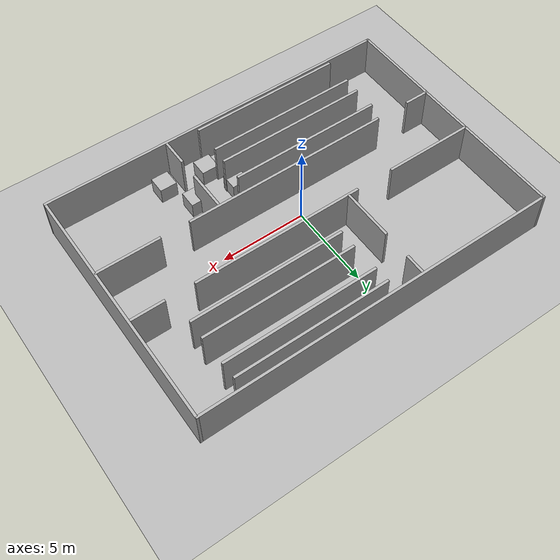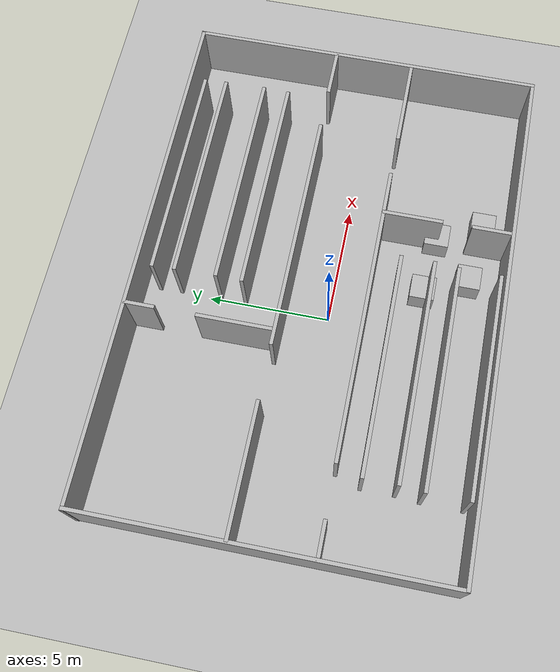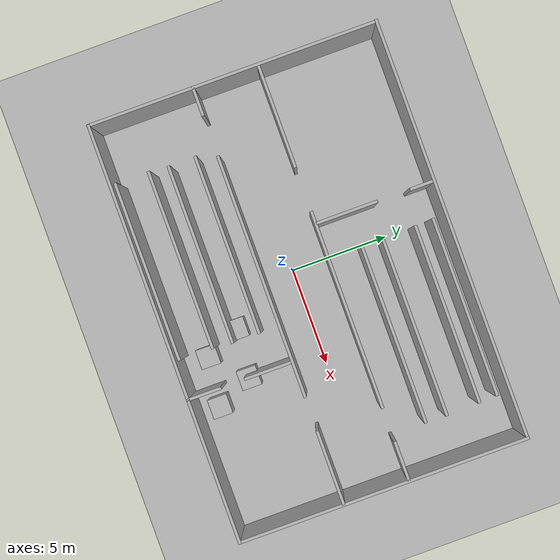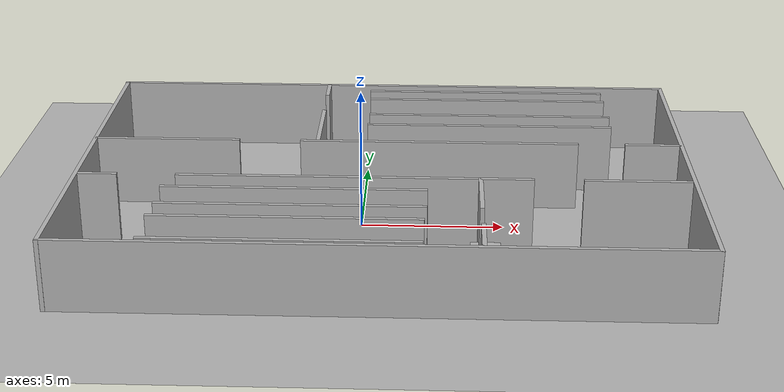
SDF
<sdf version="1.9">
 <world name="default">
  <physics type="ode">
   <ode>
    <solver>
     <type>quick</type>
     <iters>50</iters>
     <sor>1.3999999999999999</sor>
     <use_dynamic_moi_rescaling>false</use_dynamic_moi_rescaling>
    </solver>
    <constraints>
     <cfm>0</cfm>
     <erp>0.20000000000000001</erp>
     <contact_max_correcting_vel>100</contact_max_correcting_vel>
     <contact_surface_layer>0</contact_surface_layer>
    </constraints>
   </ode>
   <real_time_update_rate>1000</real_time_update_rate>
   <max_step_size>0.001</max_step_size>
   <real_time_factor>1</real_time_factor>
  </physics>
  <plugin name="gz::sim::systems::Physics" filename="gz-sim-physics-system"/>
  <plugin name="gz::sim::systems::UserCommands" filename="gz-sim-user-commands-system"/>
  <plugin name="gz::sim::systems::SceneBroadcaster" filename="gz-sim-scene-broadcaster-system"/>
  <plugin name="gz::sim::systems::Contact" filename="gz-sim-contact-system"/>
  <plugin name="gz::sim::systems::Imu" filename="gz-sim-imu-system"/>
  <plugin name="gz::sim::systems::Sensors" filename="gz-sim-sensors-system">
   <render_engine>ogre2</render_engine>
  </plugin>
  <gravity>0 0 -9.81</gravity>
  <magnetic_field>6e-06 2.3e-05 -4.2e-05</magnetic_field>
  <atmosphere type="adiabatic"/>
  <scene><ambient>0.4 0.4 0.4 1</ambient><background>0.7 0.7 0.7 1</background><shadows>true</shadows></scene>
  <audio><device>default</device></audio>
  <spherical_coordinates>
   <surface_model>EARTH_WGS84</surface_model>
   <latitude_deg>0</latitude_deg>
   <longitude_deg>0</longitude_deg>
   <elevation>0</elevation>
   <heading_deg>0</heading_deg>
  </spherical_coordinates>
  <model name="ground_plane">
   <static>true</static>
   <link name="link">
    <collision name="collision">
     <geometry><plane><normal>0 0 1</normal><size>100 100</size></plane></geometry>
     <surface><friction><ode><mu>100</mu><mu2>50</mu2></ode></friction></surface>
    </collision>
    <visual name="visual">
     <cast_shadows>false</cast_shadows>
     <geometry><plane><normal>0 0 1</normal><size>100 100</size></plane></geometry>
     <material>
      <ambient>0.7 0.7 0.7 1</ambient>
      <diffuse>0.7 0.7 0.7 1</diffuse>
      <specular>0.1 0.1 0.1 1</specular>
     </material>
    </visual>
    <inertial>
     <mass>1</mass>
     <inertia><ixx>1</ixx><ixy>0</ixy><ixz>0</ixz><iyy>1</iyy><iyz>0</iyz><izz>1</izz></inertia>
    </inertial>
   </link>
  </model>
  <model name="navigation_gym">
   <pose>0.806105 0.525836 0 0 -0 0</pose>
   <link name="Wall_11">
    <collision name="Wall_11_Collision">
     <geometry><box><size>3.1 0.15 2.5</size></box></geometry>
     <pose>0 0 1.25 0 -0 0</pose>
    </collision>
    <visual name="Wall_11_Visual">
     <pose>0 0 1.25 0 -0 0</pose>
     <geometry><box><size>3.1 0.15 2.5</size></box></geometry>
     <material>
      <ambient>0.7 0.7 0.7 1</ambient>
      <diffuse>0.7 0.7 0.7 1</diffuse>
      <specular>0.1 0.1 0.1 1</specular>
     </material>
     <meta><layer>0</layer></meta>
    </visual>
    <pose>-2.47611 2.875 0 0 0 -1.5708</pose>
    <inertial>
     <mass>1</mass>
     <inertia><ixx>1</ixx><ixy>0</ixy><ixz>0</ixz><iyy>1</iyy><iyz>0</iyz><izz>1</izz></inertia>
    </inertial>
   </link>
   <link name="Wall_13">
    <collision name="Wall_13_Collision">
     <geometry><box><size>2 0.15 2.5</size></box></geometry>
     <pose>0 0 1.25 0 -0 0</pose>
    </collision>
    <visual name="Wall_13_Visual">
     <pose>0 0 1.25 0 -0 0</pose>
     <geometry><box><size>2 0.15 2.5</size></box></geometry>
     <material>
      <ambient>0.7 0.7 0.7 1</ambient>
      <diffuse>0.7 0.7 0.7 1</diffuse>
      <specular>0.1 0.1 0.1 1</specular>
     </material>
     <meta><layer>0</layer></meta>
    </visual>
    <pose>9.56268 1.28894 0 0 -0 0</pose>
    <inertial>
     <mass>1</mass>
     <inertia><ixx>1</ixx><ixy>0</ixy><ixz>0</ixz><iyy>1</iyy><iyz>0</iyz><izz>1</izz></inertia>
    </inertial>
   </link>
   <link name="Wall_17">
    <collision name="Wall_17_Collision">
     <geometry><box><size>1.5 0.15 2.5</size></box></geometry>
     <pose>0 0 1.25 0 -0 0</pose>
    </collision>
    <visual name="Wall_17_Visual">
     <pose>0 0 1.25 0 -0 0</pose>
     <geometry><box><size>1.5 0.15 2.5</size></box></geometry>
     <material>
      <ambient>0.7 0.7 0.7 1</ambient>
      <diffuse>0.7 0.7 0.7 1</diffuse>
      <specular>0.1 0.1 0.1 1</specular>
     </material>
     <meta><layer>0</layer></meta>
    </visual>
    <pose>-9.86929 -2.00022 0 0 -0 3.14159</pose>
    <inertial>
     <mass>1</mass>
     <inertia><ixx>1</ixx><ixy>0</ixy><ixz>0</ixz><iyy>1</iyy><iyz>0</iyz><izz>1</izz></inertia>
    </inertial>
   </link>
   <link name="Wall_19">
    <collision name="Wall_19_Collision">
     <geometry><box><size>12.25 0.15 2.5</size></box></geometry>
     <pose>0 0 1.25 0 -0 0</pose>
    </collision>
    <visual name="Wall_19_Visual">
     <pose>0 0 1.25 0 -0 0</pose>
     <geometry><box><size>12.25 0.15 2.5</size></box></geometry>
     <material>
      <ambient>0.7 0.7 0.7 1</ambient>
      <diffuse>0.7 0.7 0.7 1</diffuse>
      <specular>0.1 0.1 0.1 1</specular>
     </material>
     <meta><layer>0</layer></meta>
    </visual>
    <pose>-0.979866 -1.99998 0 0 -0 0</pose>
    <inertial>
     <mass>1</mass>
     <inertia><ixx>1</ixx><ixy>0</ixy><ixz>0</ixz><iyy>1</iyy><iyz>0</iyz><izz>1</izz></inertia>
    </inertial>
   </link>
   <link name="Wall_2">
    <collision name="Wall_2_Collision">
     <geometry><box><size>21.25 0.15 2.5</size></box></geometry>
     <pose>0 0 1.25 0 -0 0</pose>
    </collision>
    <visual name="Wall_2_Visual">
     <pose>0 0 1.25 0 -0 0</pose>
     <geometry><box><size>21.25 0.15 2.5</size></box></geometry>
     <material>
      <ambient>0.7 0.7 0.7 1</ambient>
      <diffuse>0.7 0.7 0.7 1</diffuse>
      <specular>0.1 0.1 0.1 1</specular>
     </material>
     <meta><layer>0</layer></meta>
    </visual>
    <pose>0.021038 -7.29806 0 0 -0 0</pose>
    <inertial>
     <mass>1</mass>
     <inertia><ixx>1</ixx><ixy>0</ixy><ixz>0</ixz><iyy>1</iyy><iyz>0</iyz><izz>1</izz></inertia>
    </inertial>
   </link>
   <link name="Wall_28">
    <collision name="Wall_28_Collision">
     <geometry><box><size>3.75 0.15 2.5</size></box></geometry>
     <pose>0 0 1.25 0 -0 0</pose>
    </collision>
    <visual name="Wall_28_Visual">
     <pose>0 0 1.25 0 -0 0</pose>
     <geometry><box><size>3.75 0.15 2.5</size></box></geometry>
     <material>
      <ambient>0.7 0.7 0.7 1</ambient>
      <diffuse>0.7 0.7 0.7 1</diffuse>
      <specular>0.1 0.1 0.1 1</specular>
     </material>
     <meta><layer>0</layer></meta>
    </visual>
    <pose>8.70181 -2.01738 0 0 -0 0</pose>
    <inertial>
     <mass>1</mass>
     <inertia><ixx>1</ixx><ixy>0</ixy><ixz>0</ixz><iyy>1</iyy><iyz>0</iyz><izz>1</izz></inertia>
    </inertial>
   </link>
   <link name="Wall_3">
    <collision name="Wall_3_Collision">
     <geometry><box><size>14.75 0.15 2.5</size></box></geometry>
     <pose>0 0 1.25 0 -0 0</pose>
    </collision>
    <visual name="Wall_3_Visual">
     <pose>0 0 1.25 0 -0 0</pose>
     <geometry><box><size>14.75 0.15 2.5</size></box></geometry>
     <material>
      <ambient>0.7 0.7 0.7 1</ambient>
      <diffuse>0.7 0.7 0.7 1</diffuse>
      <specular>0.1 0.1 0.1 1</specular>
     </material>
     <meta><layer>0</layer></meta>
    </visual>
    <pose>10.571 0.00194 0 0 -0 1.5708</pose>
    <inertial>
     <mass>1</mass>
     <inertia><ixx>1</ixx><ixy>0</ixy><ixz>0</ixz><iyy>1</iyy><iyz>0</iyz><izz>1</izz></inertia>
    </inertial>
   </link>
   <link name="Wall_30">
    <collision name="Wall_30_Collision">
     <geometry><box><size>2.5 0.15 2.5</size></box></geometry>
     <pose>0 0 1.25 0 -0 0</pose>
    </collision>
    <visual name="Wall_30_Visual">
     <pose>0 0 1.25 0 -0 0</pose>
     <geometry><box><size>2.5 0.15 2.5</size></box></geometry>
     <material>
      <ambient>0.7 0.7 0.7 1</ambient>
      <diffuse>0.7 0.7 0.7 1</diffuse>
      <specular>0.1 0.1 0.1 1</specular>
     </material>
     <meta><layer>0</layer></meta>
    </visual>
    <pose>3.33172 -3.18497 0 0 0 -1.5708</pose>
    <inertial>
     <mass>1</mass>
     <inertia><ixx>1</ixx><ixy>0</ixy><ixz>0</ixz><iyy>1</iyy><iyz>0</iyz><izz>1</izz></inertia>
    </inertial>
   </link>
   <link name="Wall_33">
    <collision name="Wall_33_Collision">
     <geometry><box><size>1.25 0.15 2.5</size></box></geometry>
     <pose>0 0 1.25 0 -0 0</pose>
    </collision>
    <visual name="Wall_33_Visual">
     <pose>0 0 1.25 0 -0 0</pose>
     <geometry><box><size>1.25 0.15 2.5</size></box></geometry>
     <material>
      <ambient>0.7 0.7 0.7 1</ambient>
      <diffuse>0.7 0.7 0.7 1</diffuse>
      <specular>0.1 0.1 0.1 1</specular>
     </material>
     <meta><layer>0</layer></meta>
    </visual>
    <pose>-2.47444 6.6858 0 0 0 -1.5708</pose>
    <inertial>
     <mass>1</mass>
     <inertia><ixx>1</ixx><ixy>0</ixy><ixz>0</ixz><iyy>1</iyy><iyz>0</iyz><izz>1</izz></inertia>
    </inertial>
   </link>
   <link name="Wall_35">
    <collision name="Wall_35_Collision">
     <geometry><box><size>10 0.15 2.5</size></box></geometry>
     <pose>0 0 1.25 0 -0 0</pose>
    </collision>
    <visual name="Wall_35_Visual">
     <pose>0 0 1.25 0 -0 0</pose>
     <geometry><box><size>10 0.15 2.5</size></box></geometry>
     <material>
      <ambient>0.7 0.7 0.7 1</ambient>
      <diffuse>0.7 0.7 0.7 1</diffuse>
      <specular>0.1 0.1 0.1 1</specular>
     </material>
     <meta><layer>0</layer></meta>
    </visual>
    <pose>1.89146 1.28997 0 0 -0 0</pose>
    <inertial>
     <mass>1</mass>
     <inertia><ixx>1</ixx><ixy>0</ixy><ixz>0</ixz><iyy>1</iyy><iyz>0</iyz><izz>1</izz></inertia>
    </inertial>
   </link>
   <link name="Wall_38">
    <collision name="Wall_38_Collision">
     <geometry><box><size>1.75 0.15 2.5</size></box></geometry>
     <pose>0 0 1.25 0 -0 0</pose>
    </collision>
    <visual name="Wall_38_Visual">
     <pose>0 0 1.25 0 -0 0</pose>
     <geometry><box><size>1.75 0.15 2.5</size></box></geometry>
     <material>
      <ambient>0.7 0.7 0.7 1</ambient>
      <diffuse>0.7 0.7 0.7 1</diffuse>
      <specular>0.1 0.1 0.1 1</specular>
     </material>
     <meta><layer>0</layer></meta>
    </visual>
    <pose>3.34062 -6.4875 0 0 -0 1.5708</pose>
    <inertial>
     <mass>1</mass>
     <inertia><ixx>1</ixx><ixy>0</ixy><ixz>0</ixz><iyy>1</iyy><iyz>0</iyz><izz>1</izz></inertia>
    </inertial>
   </link>
   <link name="Wall_40">
    <collision name="Wall_40_Collision">
     <geometry><box><size>9 0.15 2.5</size></box></geometry>
     <pose>0 0 1.25 0 -0 0</pose>
    </collision>
    <visual name="Wall_40_Visual">
     <pose>0 0 1.25 0 -0 0</pose>
     <geometry><box><size>9 0.15 2.5</size></box></geometry>
     <material>
      <ambient>0.7 0.7 0.7 1</ambient>
      <diffuse>0.7 0.7 0.7 1</diffuse>
      <specular>0.1 0.1 0.1 1</specular>
     </material>
     <meta><layer>0</layer></meta>
    </visual>
    <pose>-2.95897 -3.02317 0 0 -0 0</pose>
    <inertial>
     <mass>1</mass>
     <inertia><ixx>1</ixx><ixy>0</ixy><ixz>0</ixz><iyy>1</iyy><iyz>0</iyz><izz>1</izz></inertia>
    </inertial>
   </link>
   <link name="Wall_42">
    <collision name="Wall_42_Collision">
     <geometry><box><size>9 0.15 2.5</size></box></geometry>
     <pose>0 0 1.25 0 -0 0</pose>
    </collision>
    <visual name="Wall_42_Visual">
     <pose>0 0 1.25 0 -0 0</pose>
     <geometry><box><size>9 0.15 2.5</size></box></geometry>
     <material>
      <ambient>0.7 0.7 0.7 1</ambient>
      <diffuse>0.7 0.7 0.7 1</diffuse>
      <specular>0.1 0.1 0.1 1</specular>
     </material>
     <meta><layer>0</layer></meta>
    </visual>
    <pose>-2.96014 -4.37595 0 0 -0 0</pose>
    <inertial>
     <mass>1</mass>
     <inertia><ixx>1</ixx><ixy>0</ixy><ixz>0</ixz><iyy>1</iyy><iyz>0</iyz><izz>1</izz></inertia>
    </inertial>
   </link>
   <link name="Wall_46">
    <collision name="Wall_46_Collision">
     <geometry><box><size>9 0.15 2.5</size></box></geometry>
     <pose>0 0 1.25 0 -0 0</pose>
    </collision>
    <visual name="Wall_46_Visual">
     <pose>0 0 1.25 0 -0 0</pose>
     <geometry><box><size>9 0.15 2.5</size></box></geometry>
     <material>
      <ambient>0.7 0.7 0.7 1</ambient>
      <diffuse>0.7 0.7 0.7 1</diffuse>
      <specular>0.1 0.1 0.1 1</specular>
     </material>
     <meta><layer>0</layer></meta>
    </visual>
    <pose>-3.05123 -7.04123 0 0 -0 0</pose>
    <inertial>
     <mass>1</mass>
     <inertia><ixx>1</ixx><ixy>0</ixy><ixz>0</ixz><iyy>1</iyy><iyz>0</iyz><izz>1</izz></inertia>
    </inertial>
   </link>
   <link name="Wall_48">
    <collision name="Wall_48_Collision">
     <geometry><box><size>9 0.15 2.5</size></box></geometry>
     <pose>0 0 1.25 0 -0 0</pose>
    </collision>
    <visual name="Wall_48_Visual">
     <pose>0 0 1.25 0 -0 0</pose>
     <geometry><box><size>9 0.15 2.5</size></box></geometry>
     <material>
      <ambient>0.7 0.7 0.7 1</ambient>
      <diffuse>0.7 0.7 0.7 1</diffuse>
      <specular>0.1 0.1 0.1 1</specular>
     </material>
     <meta><layer>0</layer></meta>
    </visual>
    <pose>-3.04033 -5.35714 0 0 -0 3.14159</pose>
    <inertial>
     <mass>1</mass>
     <inertia><ixx>1</ixx><ixy>0</ixy><ixz>0</ixz><iyy>1</iyy><iyz>0</iyz><izz>1</izz></inertia>
    </inertial>
   </link>
   <link name="Wall_5">
    <collision name="Wall_5_Collision">
     <geometry><box><size>21.263 0.15 2.5</size></box></geometry>
     <pose>0 0 1.25 0 -0 0</pose>
    </collision>
    <visual name="Wall_5_Visual">
     <pose>0 0 1.25 0 -0 0</pose>
     <geometry><box><size>21.263 0.15 2.5</size></box></geometry>
     <material>
      <ambient>0.7 0.7 0.7 1</ambient>
      <diffuse>0.7 0.7 0.7 1</diffuse>
      <specular>0.1 0.1 0.1 1</specular>
     </material>
     <meta><layer>0</layer></meta>
    </visual>
    <pose>-0.014518 7.29442 0 0 -0 3.14125</pose>
    <inertial>
     <mass>1</mass>
     <inertia><ixx>1</ixx><ixy>0</ixy><ixz>0</ixz><iyy>1</iyy><iyz>0</iyz><izz>1</izz></inertia>
    </inertial>
   </link>
   <link name="Wall_50">
    <collision name="Wall_50_Collision">
     <geometry><box><size>9 0.15 2.5</size></box></geometry>
     <pose>0 0 1.25 0 -0 0</pose>
    </collision>
    <visual name="Wall_50_Visual">
     <pose>0 0 1.25 0 -0 0</pose>
     <geometry><box><size>9 0.15 2.5</size></box></geometry>
     <material>
      <ambient>0.7 0.7 0.7 1</ambient>
      <diffuse>0.7 0.7 0.7 1</diffuse>
      <specular>0.1 0.1 0.1 1</specular>
     </material>
     <meta><layer>0</layer></meta>
    </visual>
    <pose>3.68484 6.62682 0 0 -0 0</pose>
    <inertial>
     <mass>1</mass>
     <inertia><ixx>1</ixx><ixy>0</ixy><ixz>0</ixz><iyy>1</iyy><iyz>0</iyz><izz>1</izz></inertia>
    </inertial>
   </link>
   <link name="Wall_55">
    <collision name="Wall_55_Collision">
     <geometry><box><size>9 0.15 2.5</size></box></geometry>
     <pose>0 0 1.25 0 -0 0</pose>
    </collision>
    <visual name="Wall_55_Visual">
     <pose>0 0 1.25 0 -0 0</pose>
     <geometry><box><size>9 0.15 2.5</size></box></geometry>
     <material>
      <ambient>0.7 0.7 0.7 1</ambient>
      <diffuse>0.7 0.7 0.7 1</diffuse>
      <specular>0.1 0.1 0.1 1</specular>
     </material>
     <meta><layer>0</layer></meta>
    </visual>
    <pose>3.71944 5.71674 0 0 -0 0</pose>
    <inertial>
     <mass>1</mass>
     <inertia><ixx>1</ixx><ixy>0</ixy><ixz>0</ixz><iyy>1</iyy><iyz>0</iyz><izz>1</izz></inertia>
    </inertial>
   </link>
   <link name="Wall_6">
    <collision name="Wall_6_Collision">
     <geometry><box><size>14.75 0.15 2.5</size></box></geometry>
     <pose>0 0 1.25 0 -0 0</pose>
    </collision>
    <visual name="Wall_6_Visual">
     <pose>0 0 1.25 0 -0 0</pose>
     <geometry><box><size>14.75 0.15 2.5</size></box></geometry>
     <material>
      <ambient>0.7 0.7 0.7 1</ambient>
      <diffuse>0.7 0.7 0.7 1</diffuse>
      <specular>0.1 0.1 0.1 1</specular>
     </material>
     <meta><layer>0</layer></meta>
    </visual>
    <pose>-10.5511 -0.001941 0 0 0 -1.5708</pose>
    <inertial>
     <mass>1</mass>
     <inertia><ixx>1</ixx><ixy>0</ixy><ixz>0</ixz><iyy>1</iyy><iyz>0</iyz><izz>1</izz></inertia>
    </inertial>
   </link>
   <link name="Wall_62">
    <collision name="Wall_62_Collision">
     <geometry><box><size>9 0.15 2.5</size></box></geometry>
     <pose>0 0 1.25 0 -0 0</pose>
    </collision>
    <visual name="Wall_62_Visual">
     <pose>0 0 1.25 0 -0 0</pose>
     <geometry><box><size>9 0.15 2.5</size></box></geometry>
     <material>
      <ambient>0.7 0.7 0.7 1</ambient>
      <diffuse>0.7 0.7 0.7 1</diffuse>
      <specular>0.1 0.1 0.1 1</specular>
     </material>
     <meta><layer>0</layer></meta>
    </visual>
    <pose>3.76927 4.04725 0 0 -0 0</pose>
    <inertial>
     <mass>1</mass>
     <inertia><ixx>1</ixx><ixy>0</ixy><ixz>0</ixz><iyy>1</iyy><iyz>0</iyz><izz>1</izz></inertia>
    </inertial>
   </link>
   <link name="Wall_64">
    <collision name="Wall_64_Collision">
     <geometry><box><size>9 0.15 2.5</size></box></geometry>
     <pose>0 0 1.25 0 -0 0</pose>
    </collision>
    <visual name="Wall_64_Visual">
     <pose>0 0 1.25 0 -0 0</pose>
     <geometry><box><size>9 0.15 2.5</size></box></geometry>
     <material>
      <ambient>0.7 0.7 0.7 1</ambient>
      <diffuse>0.7 0.7 0.7 1</diffuse>
      <specular>0.1 0.1 0.1 1</specular>
     </material>
     <meta><layer>0</layer></meta>
    </visual>
    <pose>3.73711 2.98614 0 0 -0 0</pose>
    <inertial>
     <mass>1</mass>
     <inertia><ixx>1</ixx><ixy>0</ixy><ixz>0</ixz><iyy>1</iyy><iyz>0</iyz><izz>1</izz></inertia>
    </inertial>
   </link>
   <link name="Wall_8">
    <collision name="Wall_8_Collision">
     <geometry><box><size>5.25 0.15 2.5</size></box></geometry>
     <pose>0 0 1.25 0 -0 0</pose>
    </collision>
    <visual name="Wall_8_Visual">
     <pose>0 0 1.25 0 -0 0</pose>
     <geometry><box><size>5.25 0.15 2.5</size></box></geometry>
     <material>
      <ambient>0.7 0.7 0.7 1</ambient>
      <diffuse>0.7 0.7 0.7 1</diffuse>
      <specular>0.1 0.1 0.1 1</specular>
     </material>
     <meta><layer>0</layer></meta>
    </visual>
    <pose>-7.9377 1.28982 0 0 -0 0</pose>
    <inertial>
     <mass>1</mass>
     <inertia><ixx>1</ixx><ixy>0</ixy><ixz>0</ixz><iyy>1</iyy><iyz>0</iyz><izz>1</izz></inertia>
    </inertial>
   </link>
   <static>true</static>
  </model>
  <model name="box">
   <pose>5.12636 -5.66602 0.5 -0 -0 0</pose>
   <link name="box_link">
    <inertial>
     <inertia><ixx>0.16666</ixx><ixy>0</ixy><ixz>0</ixz><iyy>0.16666</iyy><iyz>0</iyz><izz>0.16666</izz></inertia>
     <mass>1</mass>
    </inertial>
    <collision name="box_collision"><geometry><box><size>1 1 1</size></box></geometry></collision>
    <visual name="box_visual">
     <geometry><box><size>1 1 1</size></box></geometry>
     <material>
      <ambient>0.3 0.3 0.3 1</ambient>
      <diffuse>0.7 0.7 0.7 1</diffuse>
      <specular>1 1 1 1</specular>
     </material>
    </visual>
   </link>
   <static>false</static>
  </model>
  <model name="box_0">
   <pose>4.27898 -3.83993 0.5 0 -0 0</pose>
   <link name="box_link">
    <inertial>
     <inertia><ixx>0.16666</ixx><ixy>0</ixy><ixz>0</ixz><iyy>0.16666</iyy><iyz>0</iyz><izz>0.16666</izz></inertia>
     <mass>1</mass>
    </inertial>
    <collision name="box_collision"><geometry><box><size>1 1 1</size></box></geometry></collision>
    <visual name="box_visual">
     <geometry><box><size>1 1 1</size></box></geometry>
     <material>
      <ambient>0.3 0.3 0.3 1</ambient>
      <diffuse>0.7 0.7 0.7 1</diffuse>
      <specular>1 1 1 1</specular>
     </material>
    </visual>
   </link>
   <static>false</static>
  </model>
  <model name="box_1">
   <pose>1.80732 -3.59703 0.5 -0 0 -0</pose>
   <link name="box_link">
    <inertial>
     <inertia><ixx>0.16666</ixx><ixy>0</ixy><ixz>0</ixz><iyy>0.16666</iyy><iyz>0</iyz><izz>0.16666</izz></inertia>
     <mass>1</mass>
    </inertial>
    <collision name="box_collision"><geometry><box><size>1 1 1</size></box></geometry></collision>
    <visual name="box_visual">
     <geometry><box><size>1 1 1</size></box></geometry>
     <material>
      <ambient>0.3 0.3 0.3 1</ambient>
      <diffuse>0.7 0.7 0.7 1</diffuse>
      <specular>1 1 1 1</specular>
     </material>
    </visual>
   </link>
   <static>false</static>
  </model>
  <model name="box_2">
   <pose>2.61495 -5.38543 0.5 -0 -0 0</pose>
   <link name="box_link">
    <inertial>
     <inertia><ixx>0.16666</ixx><ixy>0</ixy><ixz>0</ixz><iyy>0.16666</iyy><iyz>0</iyz><izz>0.16666</izz></inertia>
     <mass>1</mass>
    </inertial>
    <collision name="box_collision"><geometry><box><size>1 1 1</size></box></geometry></collision>
    <visual name="box_visual">
     <geometry><box><size>1 1 1</size></box></geometry>
     <material>
      <ambient>0.3 0.3 0.3 1</ambient>
      <diffuse>0.7 0.7 0.7 1</diffuse>
      <specular>1 1 1 1</specular>
     </material>
    </visual>
   </link>
   <static>false</static>
  </model>
  <light name="sun" type="directional">
   <pose>0 0 10 0 -0 0</pose>
   <intensity>1</intensity>
   <direction>-0.5 0.1 -0.9</direction>
   <diffuse>0.8 0.8 0.8 1</diffuse>
   <specular>0.2 0.2 0.2 1</specular>
   <attenuation>
    <range>1000</range>
    <linear>0.01</linear>
    <constant>0.90000000000000002</constant>
    <quadratic>0.001</quadratic>
   </attenuation>
   <spot><inner_angle>0</inner_angle><outer_angle>0</outer_angle><falloff>0</falloff></spot>
  </light>
 </world>
</sdf>
